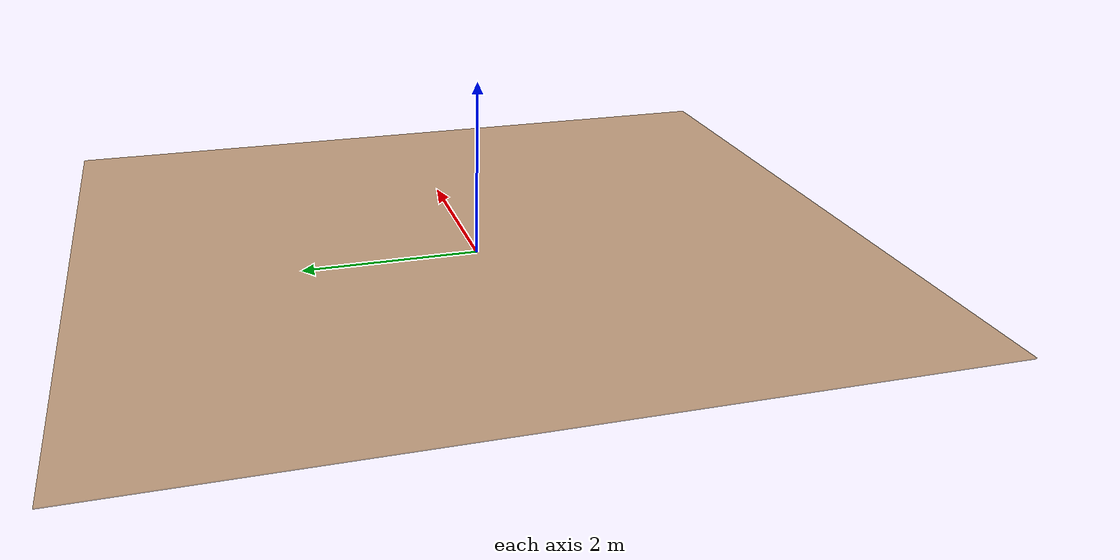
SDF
<?xml version='1.0'?>
<sdf version='1.4'>
  <model name='floor'>
    <link name='Floor'>
      <pose>0.3 0 0.01 0 0 0</pose>
      <visual name='Floor'>
        <pose>0 0 0 0 0 0</pose>
        <transparency>0.3</transparency>
        <geometry>
          <box>
            <size>8.0 9.0 0.01</size>
          </box>
        </geometry>
        <material>
          <script>
            <uri>file://media/materials/scripts/gazebo.material</uri>
            <name>Gazebo/WoodFloor</name>
          </script>
        </material>
      </visual>
      <velocity_decay>
        <linear>0</linear>
        <angular>0</angular>
      </velocity_decay>
    </link>
    <static>1</static>
  </model>
</sdf>
